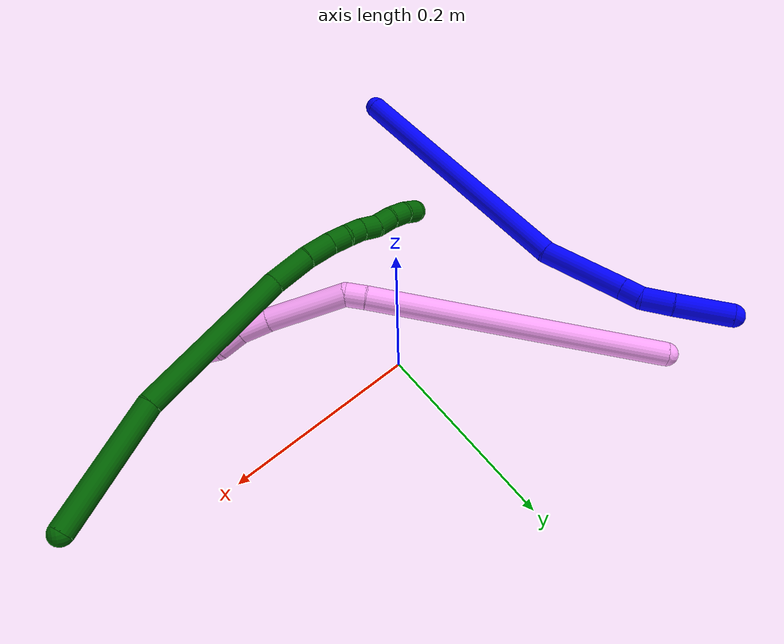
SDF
<sdf version="1.7">
 <world name="default">
  <model name="photoneo_s_sensor">
   <static>1</static>
   <pose>0 0 2 1.57079 1.57079 3.14159</pose>
   <link name="link">
    <inertial><mass>0.1</mass></inertial>
    <sensor name="sensor" type="depth">
     <update_rate>30</update_rate>
     <camera>
      <horizontal_fov>1.22</horizontal_fov>
      <image><width>1920</width><height>1200</height><format>B8G8R8</format></image>
      <clip><near>0.1</near><far>4</far></clip>
      <depth_camera><output>points</output></depth_camera>
     </camera>
     <plugin name="camera_plugin" filename="libgazebo_ros_depth_camera.so">
      <baseline>0.2</baseline>
      <alwaysOn>1</alwaysOn>
      <updateRate>0.0</updateRate>
      <cameraName>camera_ir</cameraName>
      <imageTopicName>/camera/color/image_raw</imageTopicName>
      <cameraInfoTopicName>/camera/color/camera_info</cameraInfoTopicName>
      <depthImageTopicName>/camera/depth/image_raw</depthImageTopicName>
      <depthImageCameraInfoTopicName>/camera/depth/camera_info</depthImageCameraInfoTopicName>
      <pointCloudTopicName>/camera/depth/points</pointCloudTopicName>
      <frameName>fr_optical</frameName>
      <pointCloudCutoff>0.1</pointCloudCutoff>
      <pointCloudCutoffMax>2.0</pointCloudCutoffMax>
      <distortionK1>0</distortionK1>
      <distortionK2>0</distortionK2>
      <distortionK3>0</distortionK3>
      <distortionT1>0</distortionT1>
      <distortionT2>0</distortionT2>
      <CxPrime>0</CxPrime>
      <Cx>0</Cx>
      <Cy>0</Cy>
      <focalLength>0</focalLength>
      <hackBaseline>0</hackBaseline>
     </plugin>
    </sensor>
   </link>
  </model>
  <model name="bin">
   <static>1</static>
   <link name="bottom">
    <collision name="collision-bottom">
     <pose>0 0 -0.01 0 -0 0</pose>
     <geometry><box><size>0.8 0.6 0.02</size></box></geometry>
     <surface>
      <friction><ode><mu>100</mu><mu2>100</mu2></ode></friction>
      <contact><collide_bitmask>65535</collide_bitmask></contact>
     </surface>
    </collision>
   </link>
   <link name="west_wall">
    <collision name="collision-west_wall">
     <pose>-0.41 0 0.1 0 -0 0</pose>
     <geometry><box><size>0.02 0.6 0.2</size></box></geometry>
     <surface>
      <friction><ode><mu>100</mu><mu2>100</mu2></ode></friction>
      <contact><collide_bitmask>65535</collide_bitmask></contact>
     </surface>
    </collision>
   </link>
   <link name="east_wall">
    <collision name="collision-east_wall">
     <pose>0.41 0 0.1 0 -0 0</pose>
     <geometry><box><size>0.02 0.6 0.2</size></box></geometry>
     <surface>
      <friction><ode><mu>100</mu><mu2>100</mu2></ode></friction>
      <contact><collide_bitmask>65535</collide_bitmask></contact>
     </surface>
    </collision>
   </link>
   <link name="south_wall">
    <collision name="collision-south_wall">
     <pose>0 -0.31 0.1 0 -0 0</pose>
     <geometry><box><size>0.8 0.02 0.2</size></box></geometry>
     <surface>
      <friction><ode><mu>100</mu><mu2>100</mu2></ode></friction>
      <contact><collide_bitmask>65535</collide_bitmask></contact>
     </surface>
    </collision>
   </link>
   <link name="north_wall">
    <collision name="collision-north_wall">
     <pose>0 0.31 0.1 0 -0 0</pose>
     <geometry><box><size>0.8 0.02 0.2</size></box></geometry>
     <surface>
      <friction><ode><mu>100</mu><mu2>100</mu2></ode></friction>
      <contact><collide_bitmask>65535</collide_bitmask></contact>
     </surface>
    </collision>
   </link>
  </model>
  <model name="1">
   <static>0</static>
   <link name="1">
    <collision name="collision-cylinder-e_1_1_4">
     <pose>-0.050897 0.113767 0.074178 -0.993003 -0.358559 0.195737</pose>
     <geometry><cylinder><radius>0.0125</radius><length>0.290075</length></cylinder></geometry>
     <surface>
      <friction><ode><mu>1.16</mu><mu2>1.16</mu2><slip1>0</slip1><slip2>0</slip2></ode></friction>
      <contact><ode><kp>1e+06</kp><kd>1</kd><max_vel>0</max_vel><min_depth>0.001</min_depth></ode></contact>
     </surface>
    </collision>
    <visual name="visual-cylinder-e_1_1_4">
     <pose>-0.050897 0.113767 0.074178 -0.993003 -0.358559 0.195737</pose>
     <geometry><cylinder><radius>0.0125</radius><length>0.290075</length></cylinder></geometry>
     <material><ambient>0 0 1 1</ambient></material>
    </visual>
    <collision name="collision-cylinder-e_2_4_5">
     <pose>-0.107073 0.266599 0.173853 -0.992549 -0.112685 0.061062</pose>
     <geometry><cylinder><radius>0.0125</radius><length>0.093894</length></cylinder></geometry>
     <surface>
      <friction><ode><mu>1.16</mu><mu2>1.16</mu2><slip1>0</slip1><slip2>0</slip2></ode></friction>
      <contact><ode><kp>1e+06</kp><kd>1</kd><max_vel>0</max_vel><min_depth>0.001</min_depth></ode></contact>
     </surface>
    </collision>
    <visual name="visual-cylinder-e_2_4_5">
     <pose>-0.107073 0.266599 0.173853 -0.992549 -0.112685 0.061062</pose>
     <geometry><cylinder><radius>0.0125</radius><length>0.093894</length></cylinder></geometry>
     <material><ambient>0 0 1 1</ambient></material>
    </visual>
    <collision name="collision-cylinder-e_3_5_6">
     <pose>-0.113775 0.315081 0.20485 -1.04216 -0.129692 0.074513</pose>
     <geometry><cylinder><radius>0.0125</radius><length>0.021997</length></cylinder></geometry>
     <surface>
      <friction><ode><mu>1.16</mu><mu2>1.16</mu2><slip1>0</slip1><slip2>0</slip2></ode></friction>
      <contact><ode><kp>1e+06</kp><kd>1</kd><max_vel>0</max_vel><min_depth>0.001</min_depth></ode></contact>
     </surface>
    </collision>
    <visual name="visual-cylinder-e_3_5_6">
     <pose>-0.113775 0.315081 0.20485 -1.04216 -0.129692 0.074513</pose>
     <geometry><cylinder><radius>0.0125</radius><length>0.021997</length></cylinder></geometry>
     <material><ambient>0 0 1 1</ambient></material>
    </visual>
    <collision name="collision-cylinder-e_4_6_7">
     <pose>-0.112528 0.336599 0.22122 -0.838946 0.162667 -0.072668</pose>
     <geometry><cylinder><radius>0.0125</radius><length>0.032965</length></cylinder></geometry>
     <surface>
      <friction><ode><mu>1.16</mu><mu2>1.16</mu2><slip1>0</slip1><slip2>0</slip2></ode></friction>
      <contact><ode><kp>1e+06</kp><kd>1</kd><max_vel>0</max_vel><min_depth>0.001</min_depth></ode></contact>
     </surface>
    </collision>
    <visual name="visual-cylinder-e_4_6_7">
     <pose>-0.112528 0.336599 0.22122 -0.838946 0.162667 -0.072668</pose>
     <geometry><cylinder><radius>0.0125</radius><length>0.032965</length></cylinder></geometry>
     <material><ambient>0 0 1 1</ambient></material>
    </visual>
    <collision name="collision-cylinder-e_5_7_2">
     <pose>-0.103945 0.369138 0.25399 -0.750877 0.194888 -0.077018</pose>
     <geometry><cylinder><radius>0.0125</radius><length>0.061069</length></cylinder></geometry>
     <surface>
      <friction><ode><mu>1.16</mu><mu2>1.16</mu2><slip1>0</slip1><slip2>0</slip2></ode></friction>
      <contact><ode><kp>1e+06</kp><kd>1</kd><max_vel>0</max_vel><min_depth>0.001</min_depth></ode></contact>
     </surface>
    </collision>
    <visual name="visual-cylinder-e_5_7_2">
     <pose>-0.103945 0.369138 0.25399 -0.750877 0.194888 -0.077018</pose>
     <geometry><cylinder><radius>0.0125</radius><length>0.061069</length></cylinder></geometry>
     <material><ambient>0 0 1 1</ambient></material>
    </visual>
    <collision name="collision-sphere-2">
     <pose>-0.098032 0.389577 0.27589 0 -0 0</pose>
     <geometry><sphere><radius>0.0125</radius></sphere></geometry>
     <surface>
      <friction><ode><mu>1.16</mu><mu2>1.16</mu2><slip1>0</slip1><slip2>0</slip2></ode></friction>
      <contact><ode><kp>1e+06</kp><kd>1</kd><max_vel>0</max_vel><min_depth>0.001</min_depth></ode></contact>
     </surface>
    </collision>
    <visual name="visual-sphere-2">
     <pose>-0.098032 0.389577 0.27589 0 -0 0</pose>
     <geometry><sphere><radius>0.0125</radius></sphere></geometry>
     <material><ambient>0 0 1 1</ambient></material>
    </visual>
    <collision name="collision-sphere-7">
     <pose>-0.109859 0.348699 0.232089 0 -0 0</pose>
     <geometry><sphere><radius>0.0125</radius></sphere></geometry>
     <surface>
      <friction><ode><mu>1.16</mu><mu2>1.16</mu2><slip1>0</slip1><slip2>0</slip2></ode></friction>
      <contact><ode><kp>1e+06</kp><kd>1</kd><max_vel>0</max_vel><min_depth>0.001</min_depth></ode></contact>
     </surface>
    </collision>
    <visual name="visual-sphere-7">
     <pose>-0.109859 0.348699 0.232089 0 -0 0</pose>
     <geometry><sphere><radius>0.0125</radius></sphere></geometry>
     <material><ambient>0 0 1 1</ambient></material>
    </visual>
    <collision name="collision-sphere-6">
     <pose>-0.115197 0.324499 0.210351 0 -0 0</pose>
     <geometry><sphere><radius>0.0125</radius></sphere></geometry>
     <surface>
      <friction><ode><mu>1.16</mu><mu2>1.16</mu2><slip1>0</slip1><slip2>0</slip2></ode></friction>
      <contact><ode><kp>1e+06</kp><kd>1</kd><max_vel>0</max_vel><min_depth>0.001</min_depth></ode></contact>
     </surface>
    </collision>
    <visual name="visual-sphere-6">
     <pose>-0.115197 0.324499 0.210351 0 -0 0</pose>
     <geometry><sphere><radius>0.0125</radius></sphere></geometry>
     <material><ambient>0 0 1 1</ambient></material>
    </visual>
    <collision name="collision-sphere-5">
     <pose>-0.112352 0.305664 0.199349 0 -0 0</pose>
     <geometry><sphere><radius>0.0125</radius></sphere></geometry>
     <surface>
      <friction><ode><mu>1.16</mu><mu2>1.16</mu2><slip1>0</slip1><slip2>0</slip2></ode></friction>
      <contact><ode><kp>1e+06</kp><kd>1</kd><max_vel>0</max_vel><min_depth>0.001</min_depth></ode></contact>
     </surface>
    </collision>
    <visual name="visual-sphere-5">
     <pose>-0.112352 0.305664 0.199349 0 -0 0</pose>
     <geometry><sphere><radius>0.0125</radius></sphere></geometry>
     <material><ambient>0 0 1 1</ambient></material>
    </visual>
    <collision name="collision-sphere-1">
     <geometry><sphere><radius>0.0125</radius></sphere></geometry>
     <surface>
      <friction><ode><mu>1.16</mu><mu2>1.16</mu2><slip1>0</slip1><slip2>0</slip2></ode></friction>
      <contact><ode><kp>1e+06</kp><kd>1</kd><max_vel>0</max_vel><min_depth>0.001</min_depth></ode></contact>
     </surface>
    </collision>
    <visual name="visual-sphere-1">
     <geometry><sphere><radius>0.0125</radius></sphere></geometry>
     <material><ambient>0 0 1 1</ambient></material>
    </visual>
    <collision name="collision-sphere-4">
     <pose>-0.101794 0.227534 0.148356 0 -0 0</pose>
     <geometry><sphere><radius>0.0125</radius></sphere></geometry>
     <surface>
      <friction><ode><mu>1.16</mu><mu2>1.16</mu2><slip1>0</slip1><slip2>0</slip2></ode></friction>
      <contact><ode><kp>1e+06</kp><kd>1</kd><max_vel>0</max_vel><min_depth>0.001</min_depth></ode></contact>
     </surface>
    </collision>
    <visual name="visual-sphere-4">
     <pose>-0.101794 0.227534 0.148356 0 -0 0</pose>
     <geometry><sphere><radius>0.0125</radius></sphere></geometry>
     <material><ambient>0 0 1 1</ambient></material>
    </visual>
    <inertial>
     <pose>-0.074755 0.197206 0.130301 0 -0 0</pose>
     <mass>0.5</mass>
     <inertia>
      <ixx>0.002345</ixx>
      <ixy>0</ixy>
      <ixz>0</ixz>
      <iyy>0.001678</iyy>
      <iyz>0</iyz>
      <izz>-0.000941</izz>
     </inertia>
    </inertial>
   </link>
   <pose>-0.199715 -0.287975 0.015601 2.38694 -0.475471 -2.70435</pose>
  </model>
  <model name="4">
   <static>0</static>
   <link name="4">
    <collision name="collision-cylinder-e_1_1_4">
     <pose>0.028667 -0.13413 -0.077377 2.09404 0.183058 0.31519</pose>
     <geometry><cylinder><radius>0.0125</radius><length>0.314959</length></cylinder></geometry>
     <surface>
      <friction><ode><mu>1.16</mu><mu2>1.16</mu2><slip1>0</slip1><slip2>0</slip2></ode></friction>
      <contact><ode><kp>1e+06</kp><kd>1</kd><max_vel>0</max_vel><min_depth>0.001</min_depth></ode></contact>
     </surface>
    </collision>
    <visual name="visual-cylinder-e_1_1_4">
     <pose>0.028667 -0.13413 -0.077377 2.09404 0.183058 0.31519</pose>
     <geometry><cylinder><radius>0.0125</radius><length>0.314959</length></cylinder></geometry>
     <material><ambient>1 0.65098 0.996078 1</ambient></material>
    </visual>
    <collision name="collision-cylinder-e_2_4_5">
     <pose>0.059255 -0.276768 -0.160794 2.18813 0.182062 0.349881</pose>
     <geometry><cylinder><radius>0.0125</radius><length>0.021219</length></cylinder></geometry>
     <surface>
      <friction><ode><mu>1.16</mu><mu2>1.16</mu2><slip1>0</slip1><slip2>0</slip2></ode></friction>
      <contact><ode><kp>1e+06</kp><kd>1</kd><max_vel>0</max_vel><min_depth>0.001</min_depth></ode></contact>
     </surface>
    </collision>
    <visual name="visual-cylinder-e_2_4_5">
     <pose>0.059255 -0.276768 -0.160794 2.18813 0.182062 0.349881</pose>
     <geometry><cylinder><radius>0.0125</radius><length>0.021219</length></cylinder></geometry>
     <material><ambient>1 0.65098 0.996078 1</ambient></material>
    </visual>
    <collision name="collision-cylinder-e_3_5_6">
     <pose>0.084574 -0.307507 -0.193688 2.45011 0.591117 1.40348</pose>
     <geometry><cylinder><radius>0.0125</radius><length>0.083972</length></cylinder></geometry>
     <surface>
      <friction><ode><mu>1.16</mu><mu2>1.16</mu2><slip1>0</slip1><slip2>0</slip2></ode></friction>
      <contact><ode><kp>1e+06</kp><kd>1</kd><max_vel>0</max_vel><min_depth>0.001</min_depth></ode></contact>
     </surface>
    </collision>
    <visual name="visual-cylinder-e_3_5_6">
     <pose>0.084574 -0.307507 -0.193688 2.45011 0.591117 1.40348</pose>
     <geometry><cylinder><radius>0.0125</radius><length>0.083972</length></cylinder></geometry>
     <material><ambient>1 0.65098 0.996078 1</ambient></material>
    </visual>
    <collision name="collision-cylinder-e_4_6_7">
     <pose>0.117887 -0.337487 -0.229671 2.43771 0.691534 1.55157</pose>
     <geometry><cylinder><radius>0.0125</radius><length>0.031092</length></cylinder></geometry>
     <surface>
      <friction><ode><mu>1.16</mu><mu2>1.16</mu2><slip1>0</slip1><slip2>0</slip2></ode></friction>
      <contact><ode><kp>1e+06</kp><kd>1</kd><max_vel>0</max_vel><min_depth>0.001</min_depth></ode></contact>
     </surface>
    </collision>
    <visual name="visual-cylinder-e_4_6_7">
     <pose>0.117887 -0.337487 -0.229671 2.43771 0.691534 1.55157</pose>
     <geometry><cylinder><radius>0.0125</radius><length>0.031092</length></cylinder></geometry>
     <material><ambient>1 0.65098 0.996078 1</ambient></material>
    </visual>
    <collision name="collision-cylinder-e_5_7_8">
     <pose>0.138385 -0.348989 -0.247236 2.72317 0.853489 2.26786</pose>
     <geometry><cylinder><radius>0.0125</radius><length>0.028091</length></cylinder></geometry>
     <surface>
      <friction><ode><mu>1.16</mu><mu2>1.16</mu2><slip1>0</slip1><slip2>0</slip2></ode></friction>
      <contact><ode><kp>1e+06</kp><kd>1</kd><max_vel>0</max_vel><min_depth>0.001</min_depth></ode></contact>
     </surface>
    </collision>
    <visual name="visual-cylinder-e_5_7_8">
     <pose>0.138385 -0.348989 -0.247236 2.72317 0.853489 2.26786</pose>
     <geometry><cylinder><radius>0.0125</radius><length>0.028091</length></cylinder></geometry>
     <material><ambient>1 0.65098 0.996078 1</ambient></material>
    </visual>
    <collision name="collision-cylinder-e_6_8_2">
     <pose>0.153206 -0.357784 -0.263634 2.57694 0.422494 1.2732</pose>
     <geometry><cylinder><radius>0.0125</radius><length>0.020667</length></cylinder></geometry>
     <surface>
      <friction><ode><mu>1.16</mu><mu2>1.16</mu2><slip1>0</slip1><slip2>0</slip2></ode></friction>
      <contact><ode><kp>1e+06</kp><kd>1</kd><max_vel>0</max_vel><min_depth>0.001</min_depth></ode></contact>
     </surface>
    </collision>
    <visual name="visual-cylinder-e_6_8_2">
     <pose>0.153206 -0.357784 -0.263634 2.57694 0.422494 1.2732</pose>
     <geometry><cylinder><radius>0.0125</radius><length>0.020667</length></cylinder></geometry>
     <material><ambient>1 0.65098 0.996078 1</ambient></material>
    </visual>
    <collision name="collision-sphere-2">
     <pose>0.157444 -0.362827 -0.271596 0 -0 0</pose>
     <geometry><sphere><radius>0.0125</radius></sphere></geometry>
     <surface>
      <friction><ode><mu>1.16</mu><mu2>1.16</mu2><slip1>0</slip1><slip2>0</slip2></ode></friction>
      <contact><ode><kp>1e+06</kp><kd>1</kd><max_vel>0</max_vel><min_depth>0.001</min_depth></ode></contact>
     </surface>
    </collision>
    <visual name="visual-sphere-2">
     <pose>0.157444 -0.362827 -0.271596 0 -0 0</pose>
     <geometry><sphere><radius>0.0125</radius></sphere></geometry>
     <material><ambient>1 0.65098 0.996078 1</ambient></material>
    </visual>
    <collision name="collision-sphere-4">
     <pose>0.057334 -0.26826 -0.154754 0 -0 0</pose>
     <geometry><sphere><radius>0.0125</radius></sphere></geometry>
     <surface>
      <friction><ode><mu>1.16</mu><mu2>1.16</mu2><slip1>0</slip1><slip2>0</slip2></ode></friction>
      <contact><ode><kp>1e+06</kp><kd>1</kd><max_vel>0</max_vel><min_depth>0.001</min_depth></ode></contact>
     </surface>
    </collision>
    <visual name="visual-sphere-4">
     <pose>0.057334 -0.26826 -0.154754 0 -0 0</pose>
     <geometry><sphere><radius>0.0125</radius></sphere></geometry>
     <material><ambient>1 0.65098 0.996078 1</ambient></material>
    </visual>
    <collision name="collision-sphere-1">
     <geometry><sphere><radius>0.0125</radius></sphere></geometry>
     <surface>
      <friction><ode><mu>1.16</mu><mu2>1.16</mu2><slip1>0</slip1><slip2>0</slip2></ode></friction>
      <contact><ode><kp>1e+06</kp><kd>1</kd><max_vel>0</max_vel><min_depth>0.001</min_depth></ode></contact>
     </surface>
    </collision>
    <visual name="visual-sphere-1">
     <geometry><sphere><radius>0.0125</radius></sphere></geometry>
     <material><ambient>1 0.65098 0.996078 1</ambient></material>
    </visual>
    <collision name="collision-sphere-8">
     <pose>0.148969 -0.35274 -0.255672 0 -0 0</pose>
     <geometry><sphere><radius>0.0125</radius></sphere></geometry>
     <surface>
      <friction><ode><mu>1.16</mu><mu2>1.16</mu2><slip1>0</slip1><slip2>0</slip2></ode></friction>
      <contact><ode><kp>1e+06</kp><kd>1</kd><max_vel>0</max_vel><min_depth>0.001</min_depth></ode></contact>
     </surface>
    </collision>
    <visual name="visual-sphere-8">
     <pose>0.148969 -0.35274 -0.255672 0 -0 0</pose>
     <geometry><sphere><radius>0.0125</radius></sphere></geometry>
     <material><ambient>1 0.65098 0.996078 1</ambient></material>
    </visual>
    <collision name="collision-sphere-5">
     <pose>0.061176 -0.285276 -0.166834 0 -0 0</pose>
     <geometry><sphere><radius>0.0125</radius></sphere></geometry>
     <surface>
      <friction><ode><mu>1.16</mu><mu2>1.16</mu2><slip1>0</slip1><slip2>0</slip2></ode></friction>
      <contact><ode><kp>1e+06</kp><kd>1</kd><max_vel>0</max_vel><min_depth>0.001</min_depth></ode></contact>
     </surface>
    </collision>
    <visual name="visual-sphere-5">
     <pose>0.061176 -0.285276 -0.166834 0 -0 0</pose>
     <geometry><sphere><radius>0.0125</radius></sphere></geometry>
     <material><ambient>1 0.65098 0.996078 1</ambient></material>
    </visual>
    <collision name="collision-sphere-6">
     <pose>0.107973 -0.329738 -0.220542 0 -0 0</pose>
     <geometry><sphere><radius>0.0125</radius></sphere></geometry>
     <surface>
      <friction><ode><mu>1.16</mu><mu2>1.16</mu2><slip1>0</slip1><slip2>0</slip2></ode></friction>
      <contact><ode><kp>1e+06</kp><kd>1</kd><max_vel>0</max_vel><min_depth>0.001</min_depth></ode></contact>
     </surface>
    </collision>
    <visual name="visual-sphere-6">
     <pose>0.107973 -0.329738 -0.220542 0 -0 0</pose>
     <geometry><sphere><radius>0.0125</radius></sphere></geometry>
     <material><ambient>1 0.65098 0.996078 1</ambient></material>
    </visual>
    <collision name="collision-sphere-7">
     <pose>0.127801 -0.345237 -0.238799 0 -0 0</pose>
     <geometry><sphere><radius>0.0125</radius></sphere></geometry>
     <surface>
      <friction><ode><mu>1.16</mu><mu2>1.16</mu2><slip1>0</slip1><slip2>0</slip2></ode></friction>
      <contact><ode><kp>1e+06</kp><kd>1</kd><max_vel>0</max_vel><min_depth>0.001</min_depth></ode></contact>
     </surface>
    </collision>
    <visual name="visual-sphere-7">
     <pose>0.127801 -0.345237 -0.238799 0 -0 0</pose>
     <geometry><sphere><radius>0.0125</radius></sphere></geometry>
     <material><ambient>1 0.65098 0.996078 1</ambient></material>
    </visual>
    <inertial>
     <pose>0.056214 -0.203262 -0.127163 0 -0 0</pose>
     <mass>0.5</mass>
     <inertia>
      <ixx>0.003313</ixx>
      <ixy>0</ixy>
      <ixz>0</ixz>
      <iyy>-0.000282</iyy>
      <iyz>0</iyz>
      <izz>0.001728</izz>
     </inertia>
    </inertial>
   </link>
   <pose>-0.215872 0.172015 0.012223 -0.697027 0.159947 0.531676</pose>
  </model>
  <model name="6">
   <static>0</static>
   <link name="6">
    <collision name="collision-cylinder-e_1_1_4">
     <pose>-0.046672 -0.008741 -0.04671 2.9566 -0.776385 -2.69547</pose>
     <geometry><cylinder><radius>0.0125</radius><length>0.133215</length></cylinder></geometry>
     <surface>
      <friction><ode><mu>1.16</mu><mu2>1.16</mu2><slip1>0</slip1><slip2>0</slip2></ode></friction>
      <contact><ode><kp>1e+06</kp><kd>1</kd><max_vel>0</max_vel><min_depth>0.001</min_depth></ode></contact>
     </surface>
    </collision>
    <visual name="visual-cylinder-e_1_1_4">
     <pose>-0.046672 -0.008741 -0.04671 2.9566 -0.776385 -2.69547</pose>
     <geometry><cylinder><radius>0.0125</radius><length>0.133215</length></cylinder></geometry>
     <material><ambient>0 0.392157 0.003922 1</ambient></material>
    </visual>
    <collision name="collision-cylinder-e_2_4_5">
     <pose>-0.140298 -0.026278 -0.164488 3.01845 -0.580366 -2.73441</pose>
     <geometry><cylinder><radius>0.0125</radius><length>0.171261</length></cylinder></geometry>
     <surface>
      <friction><ode><mu>1.16</mu><mu2>1.16</mu2><slip1>0</slip1><slip2>0</slip2></ode></friction>
      <contact><ode><kp>1e+06</kp><kd>1</kd><max_vel>0</max_vel><min_depth>0.001</min_depth></ode></contact>
     </surface>
    </collision>
    <visual name="visual-cylinder-e_2_4_5">
     <pose>-0.140298 -0.026278 -0.164488 3.01845 -0.580366 -2.73441</pose>
     <geometry><cylinder><radius>0.0125</radius><length>0.171261</length></cylinder></geometry>
     <material><ambient>0 0.392157 0.003922 1</ambient></material>
    </visual>
    <collision name="collision-cylinder-e_3_5_6">
     <pose>-0.197585 -0.034921 -0.255178 -3.13379 -0.484696 3.11003</pose>
     <geometry><cylinder><radius>0.0125</radius><length>0.044358</length></cylinder></geometry>
     <surface>
      <friction><ode><mu>1.16</mu><mu2>1.16</mu2><slip1>0</slip1><slip2>0</slip2></ode></friction>
      <contact><ode><kp>1e+06</kp><kd>1</kd><max_vel>0</max_vel><min_depth>0.001</min_depth></ode></contact>
     </surface>
    </collision>
    <visual name="visual-cylinder-e_3_5_6">
     <pose>-0.197585 -0.034921 -0.255178 -3.13379 -0.484696 3.11003</pose>
     <geometry><cylinder><radius>0.0125</radius><length>0.044358</length></cylinder></geometry>
     <material><ambient>0 0.392157 0.003922 1</ambient></material>
    </visual>
    <collision name="collision-cylinder-e_4_6_7">
     <pose>-0.213399 -0.035655 -0.289035 3.07933 -0.366827 -2.80892</pose>
     <geometry><cylinder><radius>0.0125</radius><length>0.030554</length></cylinder></geometry>
     <surface>
      <friction><ode><mu>1.16</mu><mu2>1.16</mu2><slip1>0</slip1><slip2>0</slip2></ode></friction>
      <contact><ode><kp>1e+06</kp><kd>1</kd><max_vel>0</max_vel><min_depth>0.001</min_depth></ode></contact>
     </surface>
    </collision>
    <visual name="visual-cylinder-e_4_6_7">
     <pose>-0.213399 -0.035655 -0.289035 3.07933 -0.366827 -2.80892</pose>
     <geometry><cylinder><radius>0.0125</radius><length>0.030554</length></cylinder></geometry>
     <material><ambient>0 0.392157 0.003922 1</ambient></material>
    </visual>
    <collision name="collision-cylinder-e_5_7_8">
     <pose>-0.221638 -0.036626 -0.313096 3.13313 -0.273817 -3.08019</pose>
     <geometry><cylinder><radius>0.0125</radius><length>0.020418</length></cylinder></geometry>
     <surface>
      <friction><ode><mu>1.16</mu><mu2>1.16</mu2><slip1>0</slip1><slip2>0</slip2></ode></friction>
      <contact><ode><kp>1e+06</kp><kd>1</kd><max_vel>0</max_vel><min_depth>0.001</min_depth></ode></contact>
     </surface>
    </collision>
    <visual name="visual-cylinder-e_5_7_8">
     <pose>-0.221638 -0.036626 -0.313096 3.13313 -0.273817 -3.08019</pose>
     <geometry><cylinder><radius>0.0125</radius><length>0.020418</length></cylinder></geometry>
     <material><ambient>0 0.392157 0.003922 1</ambient></material>
    </visual>
    <collision name="collision-cylinder-e_6_8_9">
     <pose>-0.226846 -0.039384 -0.332313 2.86405 -0.245634 -1.44758</pose>
     <geometry><cylinder><radius>0.0125</radius><length>0.020128</length></cylinder></geometry>
     <surface>
      <friction><ode><mu>1.16</mu><mu2>1.16</mu2><slip1>0</slip1><slip2>0</slip2></ode></friction>
      <contact><ode><kp>1e+06</kp><kd>1</kd><max_vel>0</max_vel><min_depth>0.001</min_depth></ode></contact>
     </surface>
    </collision>
    <visual name="visual-cylinder-e_6_8_9">
     <pose>-0.226846 -0.039384 -0.332313 2.86405 -0.245634 -1.44758</pose>
     <geometry><cylinder><radius>0.0125</radius><length>0.020128</length></cylinder></geometry>
     <material><ambient>0 0.392157 0.003922 1</ambient></material>
    </visual>
    <collision name="collision-cylinder-e_7_9_10">
     <pose>-0.230117 -0.042874 -0.351641 3.05966 -0.082364 -1.57606</pose>
     <geometry><cylinder><radius>0.0125</radius><length>0.020014</length></cylinder></geometry>
     <surface>
      <friction><ode><mu>1.16</mu><mu2>1.16</mu2><slip1>0</slip1><slip2>0</slip2></ode></friction>
      <contact><ode><kp>1e+06</kp><kd>1</kd><max_vel>0</max_vel><min_depth>0.001</min_depth></ode></contact>
     </surface>
    </collision>
    <visual name="visual-cylinder-e_7_9_10">
     <pose>-0.230117 -0.042874 -0.351641 3.05966 -0.082364 -1.57606</pose>
     <geometry><cylinder><radius>0.0125</radius><length>0.020014</length></cylinder></geometry>
     <material><ambient>0 0.392157 0.003922 1</ambient></material>
    </visual>
    <collision name="collision-cylinder-e_8_10_11">
     <pose>-0.23443 -0.0446 -0.370915 3.04447 -0.356193 -2.61418</pose>
     <geometry><cylinder><radius>0.0125</radius><length>0.020014</length></cylinder></geometry>
     <surface>
      <friction><ode><mu>1.16</mu><mu2>1.16</mu2><slip1>0</slip1><slip2>0</slip2></ode></friction>
      <contact><ode><kp>1e+06</kp><kd>1</kd><max_vel>0</max_vel><min_depth>0.001</min_depth></ode></contact>
     </surface>
    </collision>
    <visual name="visual-cylinder-e_8_10_11">
     <pose>-0.23443 -0.0446 -0.370915 3.04447 -0.356193 -2.61418</pose>
     <geometry><cylinder><radius>0.0125</radius><length>0.020014</length></cylinder></geometry>
     <material><ambient>0 0.392157 0.003922 1</ambient></material>
    </visual>
    <collision name="collision-cylinder-e_9_11_12">
     <pose>-0.239985 -0.047973 -0.389724 2.88723 -0.207996 -1.36913</pose>
     <geometry><cylinder><radius>0.0125</radius><length>0.020009</length></cylinder></geometry>
     <surface>
      <friction><ode><mu>1.16</mu><mu2>1.16</mu2><slip1>0</slip1><slip2>0</slip2></ode></friction>
      <contact><ode><kp>1e+06</kp><kd>1</kd><max_vel>0</max_vel><min_depth>0.001</min_depth></ode></contact>
     </surface>
    </collision>
    <visual name="visual-cylinder-e_9_11_12">
     <pose>-0.239985 -0.047973 -0.389724 2.88723 -0.207996 -1.36913</pose>
     <geometry><cylinder><radius>0.0125</radius><length>0.020009</length></cylinder></geometry>
     <material><ambient>0 0.392157 0.003922 1</ambient></material>
    </visual>
    <collision name="collision-cylinder-e_10_12_2">
     <pose>-0.242688 -0.055294 -0.407933 2.63407 -0.063594 -0.244067</pose>
     <geometry><cylinder><radius>0.0125</radius><length>0.02003</length></cylinder></geometry>
     <surface>
      <friction><ode><mu>1.16</mu><mu2>1.16</mu2><slip1>0</slip1><slip2>0</slip2></ode></friction>
      <contact><ode><kp>1e+06</kp><kd>1</kd><max_vel>0</max_vel><min_depth>0.001</min_depth></ode></contact>
     </surface>
    </collision>
    <visual name="visual-cylinder-e_10_12_2">
     <pose>-0.242688 -0.055294 -0.407933 2.63407 -0.063594 -0.244067</pose>
     <geometry><cylinder><radius>0.0125</radius><length>0.02003</length></cylinder></geometry>
     <material><ambient>0 0.392157 0.003922 1</ambient></material>
    </visual>
    <collision name="collision-sphere-2">
     <pose>-0.243324 -0.060151 -0.416667 0 -0 0</pose>
     <geometry><sphere><radius>0.0125</radius></sphere></geometry>
     <surface>
      <friction><ode><mu>1.16</mu><mu2>1.16</mu2><slip1>0</slip1><slip2>0</slip2></ode></friction>
      <contact><ode><kp>1e+06</kp><kd>1</kd><max_vel>0</max_vel><min_depth>0.001</min_depth></ode></contact>
     </surface>
    </collision>
    <visual name="visual-sphere-2">
     <pose>-0.243324 -0.060151 -0.416667 0 -0 0</pose>
     <geometry><sphere><radius>0.0125</radius></sphere></geometry>
     <material><ambient>0 0.392157 0.003922 1</ambient></material>
    </visual>
    <collision name="collision-sphere-12">
     <pose>-0.242051 -0.050436 -0.399198 0 -0 0</pose>
     <geometry><sphere><radius>0.0125</radius></sphere></geometry>
     <surface>
      <friction><ode><mu>1.16</mu><mu2>1.16</mu2><slip1>0</slip1><slip2>0</slip2></ode></friction>
      <contact><ode><kp>1e+06</kp><kd>1</kd><max_vel>0</max_vel><min_depth>0.001</min_depth></ode></contact>
     </surface>
    </collision>
    <visual name="visual-sphere-12">
     <pose>-0.242051 -0.050436 -0.399198 0 -0 0</pose>
     <geometry><sphere><radius>0.0125</radius></sphere></geometry>
     <material><ambient>0 0.392157 0.003922 1</ambient></material>
    </visual>
    <collision name="collision-sphere-11">
     <pose>-0.237919 -0.04551 -0.38025 0 -0 0</pose>
     <geometry><sphere><radius>0.0125</radius></sphere></geometry>
     <surface>
      <friction><ode><mu>1.16</mu><mu2>1.16</mu2><slip1>0</slip1><slip2>0</slip2></ode></friction>
      <contact><ode><kp>1e+06</kp><kd>1</kd><max_vel>0</max_vel><min_depth>0.001</min_depth></ode></contact>
     </surface>
    </collision>
    <visual name="visual-sphere-11">
     <pose>-0.237919 -0.04551 -0.38025 0 -0 0</pose>
     <geometry><sphere><radius>0.0125</radius></sphere></geometry>
     <material><ambient>0 0.392157 0.003922 1</ambient></material>
    </visual>
    <collision name="collision-sphere-10">
     <pose>-0.23094 -0.043691 -0.361581 0 -0 0</pose>
     <geometry><sphere><radius>0.0125</radius></sphere></geometry>
     <surface>
      <friction><ode><mu>1.16</mu><mu2>1.16</mu2><slip1>0</slip1><slip2>0</slip2></ode></friction>
      <contact><ode><kp>1e+06</kp><kd>1</kd><max_vel>0</max_vel><min_depth>0.001</min_depth></ode></contact>
     </surface>
    </collision>
    <visual name="visual-sphere-10">
     <pose>-0.23094 -0.043691 -0.361581 0 -0 0</pose>
     <geometry><sphere><radius>0.0125</radius></sphere></geometry>
     <material><ambient>0 0.392157 0.003922 1</ambient></material>
    </visual>
    <collision name="collision-sphere-9">
     <pose>-0.229294 -0.042058 -0.341702 0 -0 0</pose>
     <geometry><sphere><radius>0.0125</radius></sphere></geometry>
     <surface>
      <friction><ode><mu>1.16</mu><mu2>1.16</mu2><slip1>0</slip1><slip2>0</slip2></ode></friction>
      <contact><ode><kp>1e+06</kp><kd>1</kd><max_vel>0</max_vel><min_depth>0.001</min_depth></ode></contact>
     </surface>
    </collision>
    <visual name="visual-sphere-9">
     <pose>-0.229294 -0.042058 -0.341702 0 -0 0</pose>
     <geometry><sphere><radius>0.0125</radius></sphere></geometry>
     <material><ambient>0 0.392157 0.003922 1</ambient></material>
    </visual>
    <collision name="collision-sphere-4">
     <pose>-0.093344 -0.017482 -0.09342 0 -0 0</pose>
     <geometry><sphere><radius>0.0125</radius></sphere></geometry>
     <surface>
      <friction><ode><mu>1.16</mu><mu2>1.16</mu2><slip1>0</slip1><slip2>0</slip2></ode></friction>
      <contact><ode><kp>1e+06</kp><kd>1</kd><max_vel>0</max_vel><min_depth>0.001</min_depth></ode></contact>
     </surface>
    </collision>
    <visual name="visual-sphere-4">
     <pose>-0.093344 -0.017482 -0.09342 0 -0 0</pose>
     <geometry><sphere><radius>0.0125</radius></sphere></geometry>
     <material><ambient>0 0.392157 0.003922 1</ambient></material>
    </visual>
    <collision name="collision-sphere-1">
     <geometry><sphere><radius>0.0125</radius></sphere></geometry>
     <surface>
      <friction><ode><mu>1.16</mu><mu2>1.16</mu2><slip1>0</slip1><slip2>0</slip2></ode></friction>
      <contact><ode><kp>1e+06</kp><kd>1</kd><max_vel>0</max_vel><min_depth>0.001</min_depth></ode></contact>
     </surface>
    </collision>
    <visual name="visual-sphere-1">
     <geometry><sphere><radius>0.0125</radius></sphere></geometry>
     <material><ambient>0 0.392157 0.003922 1</ambient></material>
    </visual>
    <collision name="collision-sphere-8">
     <pose>-0.224399 -0.036709 -0.322925 0 -0 0</pose>
     <geometry><sphere><radius>0.0125</radius></sphere></geometry>
     <surface>
      <friction><ode><mu>1.16</mu><mu2>1.16</mu2><slip1>0</slip1><slip2>0</slip2></ode></friction>
      <contact><ode><kp>1e+06</kp><kd>1</kd><max_vel>0</max_vel><min_depth>0.001</min_depth></ode></contact>
     </surface>
    </collision>
    <visual name="visual-sphere-8">
     <pose>-0.224399 -0.036709 -0.322925 0 -0 0</pose>
     <geometry><sphere><radius>0.0125</radius></sphere></geometry>
     <material><ambient>0 0.392157 0.003922 1</ambient></material>
    </visual>
    <collision name="collision-sphere-5">
     <pose>-0.187251 -0.035074 -0.235555 0 -0 0</pose>
     <geometry><sphere><radius>0.0125</radius></sphere></geometry>
     <surface>
      <friction><ode><mu>1.16</mu><mu2>1.16</mu2><slip1>0</slip1><slip2>0</slip2></ode></friction>
      <contact><ode><kp>1e+06</kp><kd>1</kd><max_vel>0</max_vel><min_depth>0.001</min_depth></ode></contact>
     </surface>
    </collision>
    <visual name="visual-sphere-5">
     <pose>-0.187251 -0.035074 -0.235555 0 -0 0</pose>
     <geometry><sphere><radius>0.0125</radius></sphere></geometry>
     <material><ambient>0 0.392157 0.003922 1</ambient></material>
    </visual>
    <collision name="collision-sphere-6">
     <pose>-0.207919 -0.034768 -0.274802 0 -0 0</pose>
     <geometry><sphere><radius>0.0125</radius></sphere></geometry>
     <surface>
      <friction><ode><mu>1.16</mu><mu2>1.16</mu2><slip1>0</slip1><slip2>0</slip2></ode></friction>
      <contact><ode><kp>1e+06</kp><kd>1</kd><max_vel>0</max_vel><min_depth>0.001</min_depth></ode></contact>
     </surface>
    </collision>
    <visual name="visual-sphere-6">
     <pose>-0.207919 -0.034768 -0.274802 0 -0 0</pose>
     <geometry><sphere><radius>0.0125</radius></sphere></geometry>
     <material><ambient>0 0.392157 0.003922 1</ambient></material>
    </visual>
    <collision name="collision-sphere-7">
     <pose>-0.218878 -0.036543 -0.303268 0 -0 0</pose>
     <geometry><sphere><radius>0.0125</radius></sphere></geometry>
     <surface>
      <friction><ode><mu>1.16</mu><mu2>1.16</mu2><slip1>0</slip1><slip2>0</slip2></ode></friction>
      <contact><ode><kp>1e+06</kp><kd>1</kd><max_vel>0</max_vel><min_depth>0.001</min_depth></ode></contact>
     </surface>
    </collision>
    <visual name="visual-sphere-7">
     <pose>-0.218878 -0.036543 -0.303268 0 -0 0</pose>
     <geometry><sphere><radius>0.0125</radius></sphere></geometry>
     <material><ambient>0 0.392157 0.003922 1</ambient></material>
    </visual>
    <inertial>
     <pose>-0.147162 -0.027324 -0.196109 0 -0 0</pose>
     <mass>0.5</mass>
     <inertia>
      <ixx>-0.000697</ixx>
      <ixy>0</ixy>
      <ixz>0</ixz>
      <iyy>0.000389</iyy>
      <iyz>0</iyz>
      <izz>0.000422</izz>
     </inertia>
    </inertial>
   </link>
   <pose>0.346247 -0.042779 0.049772 1.29971 0.505979 1.10101</pose>
  </model>
 </world>
</sdf>
